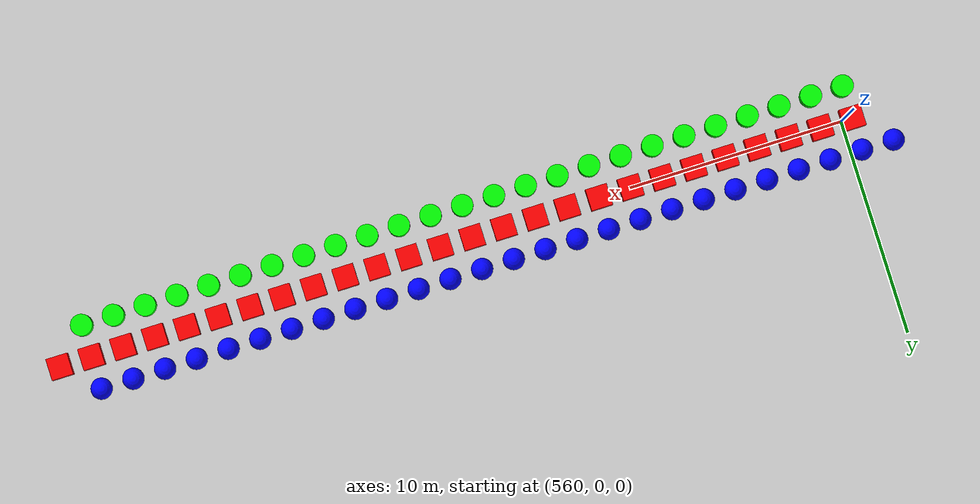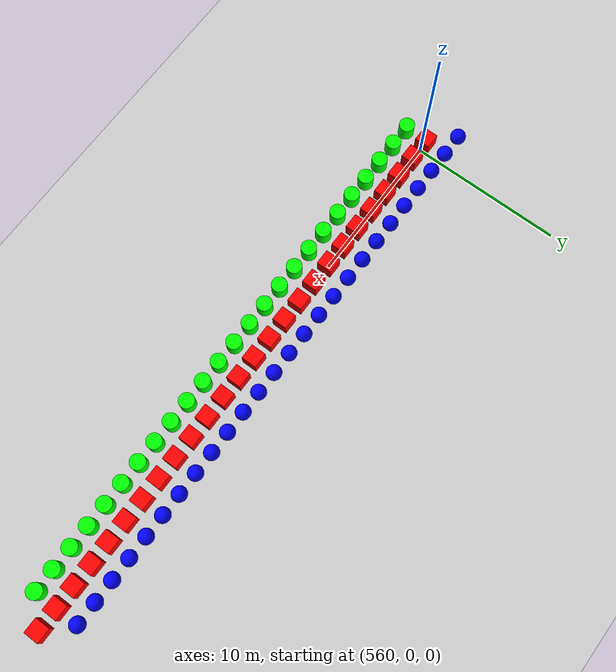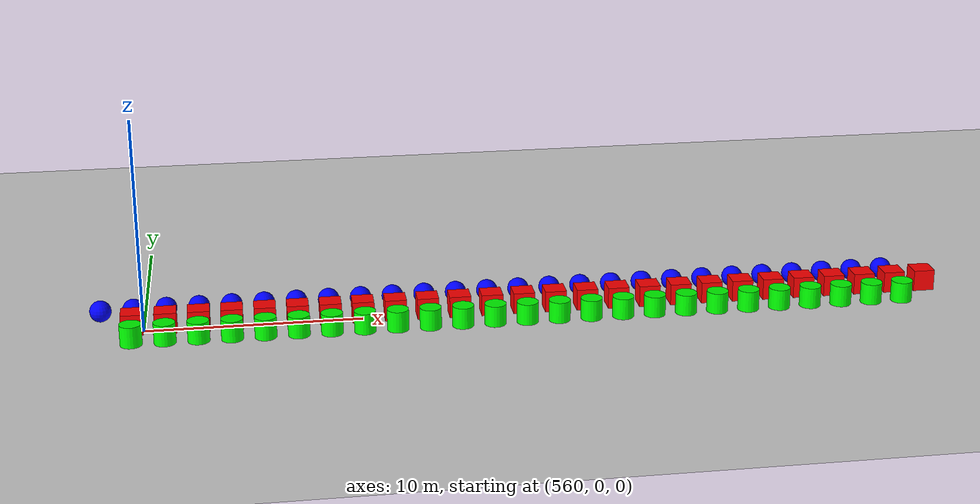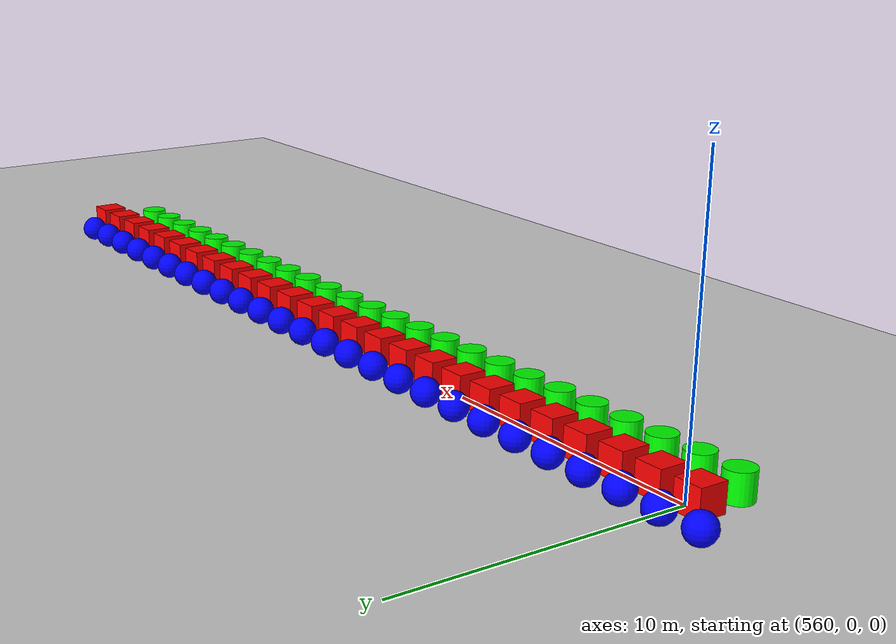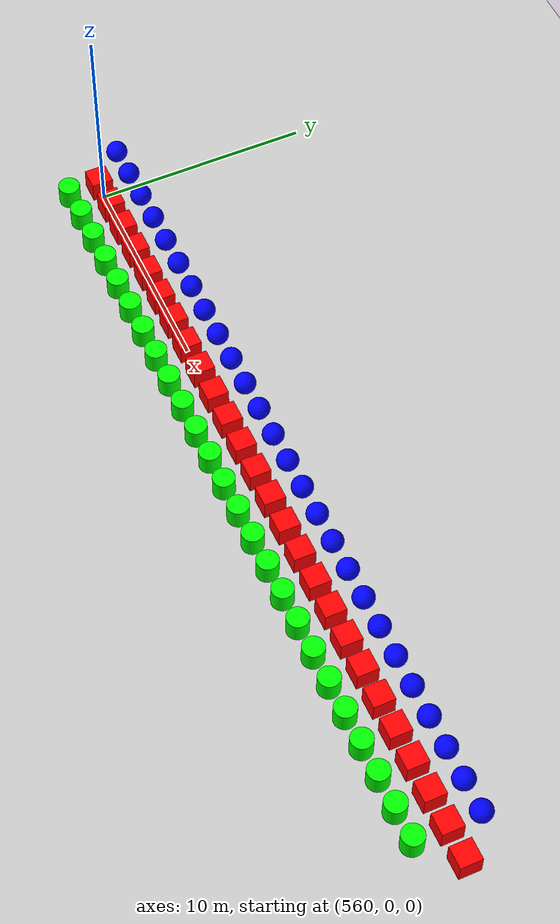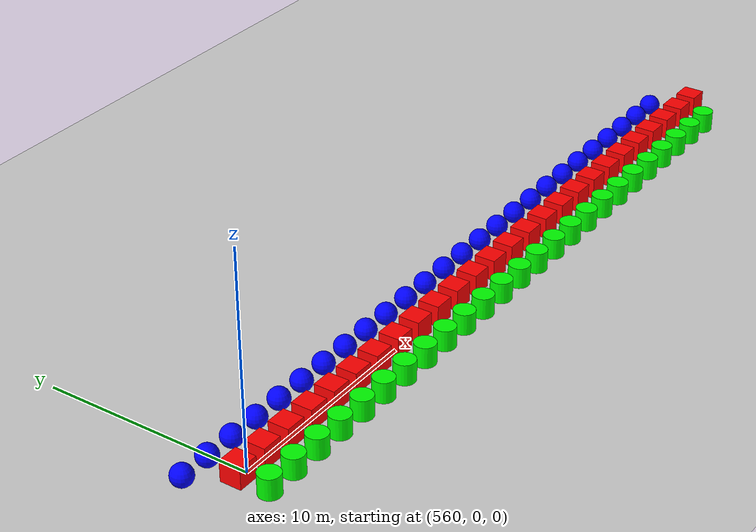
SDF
<sdf version="1.6">
 <world name="shapes">
  <model name="ground_plane">
   <static>true</static>
   <link name="link">
    <collision name="collision">
     <geometry><plane><normal>0 0 1</normal><size>100 100</size></plane></geometry>
    </collision>
    <visual name="visual">
     <geometry><plane><normal>0 0 1</normal><size>100 100</size></plane></geometry>
     <material>
      <ambient>0.8 0.8 0.8 1</ambient>
      <diffuse>0.8 0.8 0.8 1</diffuse>
      <specular>0.8 0.8 0.8 1</specular>
     </material>
    </visual>
   </link>
  </model>
  <model name="sphere_872">
   <static>false</static>
   <pose>558.0 1.5 0.5 0 0 0</pose>
   <link name="sphere_link">
    <inertial>
     <inertia><ixx>3</ixx><ixy>0</ixy><ixz>0</ixz><iyy>3</iyy><iyz>0</iyz><izz>3</izz></inertia>
     <mass>3.0</mass>
    </inertial>
    <collision name="sphere_collision"><geometry><sphere><radius>0.5</radius></sphere></geometry></collision>
    <visual name="sphere_visual">
     <geometry><sphere><radius>0.5</radius></sphere></geometry>
     <material><ambient>0 0 1 1</ambient><diffuse>0 0 1 1</diffuse><specular>0 0 1 1</specular></material>
    </visual>
   </link>
  </model>
  <model name="box_873">
   <static>false</static>
   <pose>559.5 0 0.5 0 0 0</pose>
   <link name="box_link">
    <inertial>
     <inertia><ixx>1</ixx><ixy>0</ixy><ixz>0</ixz><iyy>1</iyy><iyz>0</iyz><izz>1</izz></inertia>
     <mass>1.0</mass>
    </inertial>
    <collision name="box_collision"><geometry><box><size>1 1 1</size></box></geometry></collision>
    <visual name="box_visual">
     <geometry><box><size>1 1 1</size></box></geometry>
     <material><ambient>1 0 0 1</ambient><diffuse>1 0 0 1</diffuse><specular>1 0 0 1</specular></material>
    </visual>
   </link>
  </model>
  <model name="cylinder_873">
   <static>false</static>
   <pose>559.5 -1.5 0.5 0 0 0</pose>
   <link name="cylinder_link">
    <inertial>
     <inertia><ixx>2</ixx><ixy>0</ixy><ixz>0</ixz><iyy>2</iyy><iyz>0</iyz><izz>2</izz></inertia>
     <mass>2.0</mass>
    </inertial>
    <collision name="cylinder_collision">
     <geometry><cylinder><radius>0.5</radius><length>1.0</length></cylinder></geometry>
    </collision>
    <visual name="cylinder_visual">
     <geometry><cylinder><radius>0.5</radius><length>1.0</length></cylinder></geometry>
     <material><ambient>0 1 0 1</ambient><diffuse>0 1 0 1</diffuse><specular>0 1 0 1</specular></material>
    </visual>
   </link>
  </model>
  <model name="sphere_873">
   <static>false</static>
   <pose>559.5 1.5 0.5 0 0 0</pose>
   <link name="sphere_link">
    <inertial>
     <inertia><ixx>3</ixx><ixy>0</ixy><ixz>0</ixz><iyy>3</iyy><iyz>0</iyz><izz>3</izz></inertia>
     <mass>3.0</mass>
    </inertial>
    <collision name="sphere_collision"><geometry><sphere><radius>0.5</radius></sphere></geometry></collision>
    <visual name="sphere_visual">
     <geometry><sphere><radius>0.5</radius></sphere></geometry>
     <material><ambient>0 0 1 1</ambient><diffuse>0 0 1 1</diffuse><specular>0 0 1 1</specular></material>
    </visual>
   </link>
  </model>
  <model name="box_874">
   <static>false</static>
   <pose>561.0 0 0.5 0 0 0</pose>
   <link name="box_link">
    <inertial>
     <inertia><ixx>1</ixx><ixy>0</ixy><ixz>0</ixz><iyy>1</iyy><iyz>0</iyz><izz>1</izz></inertia>
     <mass>1.0</mass>
    </inertial>
    <collision name="box_collision"><geometry><box><size>1 1 1</size></box></geometry></collision>
    <visual name="box_visual">
     <geometry><box><size>1 1 1</size></box></geometry>
     <material><ambient>1 0 0 1</ambient><diffuse>1 0 0 1</diffuse><specular>1 0 0 1</specular></material>
    </visual>
   </link>
  </model>
  <model name="cylinder_874">
   <static>false</static>
   <pose>561.0 -1.5 0.5 0 0 0</pose>
   <link name="cylinder_link">
    <inertial>
     <inertia><ixx>2</ixx><ixy>0</ixy><ixz>0</ixz><iyy>2</iyy><iyz>0</iyz><izz>2</izz></inertia>
     <mass>2.0</mass>
    </inertial>
    <collision name="cylinder_collision">
     <geometry><cylinder><radius>0.5</radius><length>1.0</length></cylinder></geometry>
    </collision>
    <visual name="cylinder_visual">
     <geometry><cylinder><radius>0.5</radius><length>1.0</length></cylinder></geometry>
     <material><ambient>0 1 0 1</ambient><diffuse>0 1 0 1</diffuse><specular>0 1 0 1</specular></material>
    </visual>
   </link>
  </model>
  <model name="sphere_874">
   <static>false</static>
   <pose>561.0 1.5 0.5 0 0 0</pose>
   <link name="sphere_link">
    <inertial>
     <inertia><ixx>3</ixx><ixy>0</ixy><ixz>0</ixz><iyy>3</iyy><iyz>0</iyz><izz>3</izz></inertia>
     <mass>3.0</mass>
    </inertial>
    <collision name="sphere_collision"><geometry><sphere><radius>0.5</radius></sphere></geometry></collision>
    <visual name="sphere_visual">
     <geometry><sphere><radius>0.5</radius></sphere></geometry>
     <material><ambient>0 0 1 1</ambient><diffuse>0 0 1 1</diffuse><specular>0 0 1 1</specular></material>
    </visual>
   </link>
  </model>
  <model name="box_875">
   <static>false</static>
   <pose>562.5 0 0.5 0 0 0</pose>
   <link name="box_link">
    <inertial>
     <inertia><ixx>1</ixx><ixy>0</ixy><ixz>0</ixz><iyy>1</iyy><iyz>0</iyz><izz>1</izz></inertia>
     <mass>1.0</mass>
    </inertial>
    <collision name="box_collision"><geometry><box><size>1 1 1</size></box></geometry></collision>
    <visual name="box_visual">
     <geometry><box><size>1 1 1</size></box></geometry>
     <material><ambient>1 0 0 1</ambient><diffuse>1 0 0 1</diffuse><specular>1 0 0 1</specular></material>
    </visual>
   </link>
  </model>
  <model name="cylinder_875">
   <static>false</static>
   <pose>562.5 -1.5 0.5 0 0 0</pose>
   <link name="cylinder_link">
    <inertial>
     <inertia><ixx>2</ixx><ixy>0</ixy><ixz>0</ixz><iyy>2</iyy><iyz>0</iyz><izz>2</izz></inertia>
     <mass>2.0</mass>
    </inertial>
    <collision name="cylinder_collision">
     <geometry><cylinder><radius>0.5</radius><length>1.0</length></cylinder></geometry>
    </collision>
    <visual name="cylinder_visual">
     <geometry><cylinder><radius>0.5</radius><length>1.0</length></cylinder></geometry>
     <material><ambient>0 1 0 1</ambient><diffuse>0 1 0 1</diffuse><specular>0 1 0 1</specular></material>
    </visual>
   </link>
  </model>
  <model name="sphere_875">
   <static>false</static>
   <pose>562.5 1.5 0.5 0 0 0</pose>
   <link name="sphere_link">
    <inertial>
     <inertia><ixx>3</ixx><ixy>0</ixy><ixz>0</ixz><iyy>3</iyy><iyz>0</iyz><izz>3</izz></inertia>
     <mass>3.0</mass>
    </inertial>
    <collision name="sphere_collision"><geometry><sphere><radius>0.5</radius></sphere></geometry></collision>
    <visual name="sphere_visual">
     <geometry><sphere><radius>0.5</radius></sphere></geometry>
     <material><ambient>0 0 1 1</ambient><diffuse>0 0 1 1</diffuse><specular>0 0 1 1</specular></material>
    </visual>
   </link>
  </model>
  <model name="box_876">
   <static>false</static>
   <pose>564.0 0 0.5 0 0 0</pose>
   <link name="box_link">
    <inertial>
     <inertia><ixx>1</ixx><ixy>0</ixy><ixz>0</ixz><iyy>1</iyy><iyz>0</iyz><izz>1</izz></inertia>
     <mass>1.0</mass>
    </inertial>
    <collision name="box_collision"><geometry><box><size>1 1 1</size></box></geometry></collision>
    <visual name="box_visual">
     <geometry><box><size>1 1 1</size></box></geometry>
     <material><ambient>1 0 0 1</ambient><diffuse>1 0 0 1</diffuse><specular>1 0 0 1</specular></material>
    </visual>
   </link>
  </model>
  <model name="cylinder_876">
   <static>false</static>
   <pose>564.0 -1.5 0.5 0 0 0</pose>
   <link name="cylinder_link">
    <inertial>
     <inertia><ixx>2</ixx><ixy>0</ixy><ixz>0</ixz><iyy>2</iyy><iyz>0</iyz><izz>2</izz></inertia>
     <mass>2.0</mass>
    </inertial>
    <collision name="cylinder_collision">
     <geometry><cylinder><radius>0.5</radius><length>1.0</length></cylinder></geometry>
    </collision>
    <visual name="cylinder_visual">
     <geometry><cylinder><radius>0.5</radius><length>1.0</length></cylinder></geometry>
     <material><ambient>0 1 0 1</ambient><diffuse>0 1 0 1</diffuse><specular>0 1 0 1</specular></material>
    </visual>
   </link>
  </model>
  <model name="sphere_876">
   <static>false</static>
   <pose>564.0 1.5 0.5 0 0 0</pose>
   <link name="sphere_link">
    <inertial>
     <inertia><ixx>3</ixx><ixy>0</ixy><ixz>0</ixz><iyy>3</iyy><iyz>0</iyz><izz>3</izz></inertia>
     <mass>3.0</mass>
    </inertial>
    <collision name="sphere_collision"><geometry><sphere><radius>0.5</radius></sphere></geometry></collision>
    <visual name="sphere_visual">
     <geometry><sphere><radius>0.5</radius></sphere></geometry>
     <material><ambient>0 0 1 1</ambient><diffuse>0 0 1 1</diffuse><specular>0 0 1 1</specular></material>
    </visual>
   </link>
  </model>
  <model name="box_877">
   <static>false</static>
   <pose>565.5 0 0.5 0 0 0</pose>
   <link name="box_link">
    <inertial>
     <inertia><ixx>1</ixx><ixy>0</ixy><ixz>0</ixz><iyy>1</iyy><iyz>0</iyz><izz>1</izz></inertia>
     <mass>1.0</mass>
    </inertial>
    <collision name="box_collision"><geometry><box><size>1 1 1</size></box></geometry></collision>
    <visual name="box_visual">
     <geometry><box><size>1 1 1</size></box></geometry>
     <material><ambient>1 0 0 1</ambient><diffuse>1 0 0 1</diffuse><specular>1 0 0 1</specular></material>
    </visual>
   </link>
  </model>
  <model name="cylinder_877">
   <static>false</static>
   <pose>565.5 -1.5 0.5 0 0 0</pose>
   <link name="cylinder_link">
    <inertial>
     <inertia><ixx>2</ixx><ixy>0</ixy><ixz>0</ixz><iyy>2</iyy><iyz>0</iyz><izz>2</izz></inertia>
     <mass>2.0</mass>
    </inertial>
    <collision name="cylinder_collision">
     <geometry><cylinder><radius>0.5</radius><length>1.0</length></cylinder></geometry>
    </collision>
    <visual name="cylinder_visual">
     <geometry><cylinder><radius>0.5</radius><length>1.0</length></cylinder></geometry>
     <material><ambient>0 1 0 1</ambient><diffuse>0 1 0 1</diffuse><specular>0 1 0 1</specular></material>
    </visual>
   </link>
  </model>
  <model name="sphere_877">
   <static>false</static>
   <pose>565.5 1.5 0.5 0 0 0</pose>
   <link name="sphere_link">
    <inertial>
     <inertia><ixx>3</ixx><ixy>0</ixy><ixz>0</ixz><iyy>3</iyy><iyz>0</iyz><izz>3</izz></inertia>
     <mass>3.0</mass>
    </inertial>
    <collision name="sphere_collision"><geometry><sphere><radius>0.5</radius></sphere></geometry></collision>
    <visual name="sphere_visual">
     <geometry><sphere><radius>0.5</radius></sphere></geometry>
     <material><ambient>0 0 1 1</ambient><diffuse>0 0 1 1</diffuse><specular>0 0 1 1</specular></material>
    </visual>
   </link>
  </model>
  <model name="box_878">
   <static>false</static>
   <pose>567.0 0 0.5 0 0 0</pose>
   <link name="box_link">
    <inertial>
     <inertia><ixx>1</ixx><ixy>0</ixy><ixz>0</ixz><iyy>1</iyy><iyz>0</iyz><izz>1</izz></inertia>
     <mass>1.0</mass>
    </inertial>
    <collision name="box_collision"><geometry><box><size>1 1 1</size></box></geometry></collision>
    <visual name="box_visual">
     <geometry><box><size>1 1 1</size></box></geometry>
     <material><ambient>1 0 0 1</ambient><diffuse>1 0 0 1</diffuse><specular>1 0 0 1</specular></material>
    </visual>
   </link>
  </model>
  <model name="cylinder_878">
   <static>false</static>
   <pose>567.0 -1.5 0.5 0 0 0</pose>
   <link name="cylinder_link">
    <inertial>
     <inertia><ixx>2</ixx><ixy>0</ixy><ixz>0</ixz><iyy>2</iyy><iyz>0</iyz><izz>2</izz></inertia>
     <mass>2.0</mass>
    </inertial>
    <collision name="cylinder_collision">
     <geometry><cylinder><radius>0.5</radius><length>1.0</length></cylinder></geometry>
    </collision>
    <visual name="cylinder_visual">
     <geometry><cylinder><radius>0.5</radius><length>1.0</length></cylinder></geometry>
     <material><ambient>0 1 0 1</ambient><diffuse>0 1 0 1</diffuse><specular>0 1 0 1</specular></material>
    </visual>
   </link>
  </model>
  <model name="sphere_878">
   <static>false</static>
   <pose>567.0 1.5 0.5 0 0 0</pose>
   <link name="sphere_link">
    <inertial>
     <inertia><ixx>3</ixx><ixy>0</ixy><ixz>0</ixz><iyy>3</iyy><iyz>0</iyz><izz>3</izz></inertia>
     <mass>3.0</mass>
    </inertial>
    <collision name="sphere_collision"><geometry><sphere><radius>0.5</radius></sphere></geometry></collision>
    <visual name="sphere_visual">
     <geometry><sphere><radius>0.5</radius></sphere></geometry>
     <material><ambient>0 0 1 1</ambient><diffuse>0 0 1 1</diffuse><specular>0 0 1 1</specular></material>
    </visual>
   </link>
  </model>
  <model name="box_879">
   <static>false</static>
   <pose>568.5 0 0.5 0 0 0</pose>
   <link name="box_link">
    <inertial>
     <inertia><ixx>1</ixx><ixy>0</ixy><ixz>0</ixz><iyy>1</iyy><iyz>0</iyz><izz>1</izz></inertia>
     <mass>1.0</mass>
    </inertial>
    <collision name="box_collision"><geometry><box><size>1 1 1</size></box></geometry></collision>
    <visual name="box_visual">
     <geometry><box><size>1 1 1</size></box></geometry>
     <material><ambient>1 0 0 1</ambient><diffuse>1 0 0 1</diffuse><specular>1 0 0 1</specular></material>
    </visual>
   </link>
  </model>
  <model name="cylinder_879">
   <static>false</static>
   <pose>568.5 -1.5 0.5 0 0 0</pose>
   <link name="cylinder_link">
    <inertial>
     <inertia><ixx>2</ixx><ixy>0</ixy><ixz>0</ixz><iyy>2</iyy><iyz>0</iyz><izz>2</izz></inertia>
     <mass>2.0</mass>
    </inertial>
    <collision name="cylinder_collision">
     <geometry><cylinder><radius>0.5</radius><length>1.0</length></cylinder></geometry>
    </collision>
    <visual name="cylinder_visual">
     <geometry><cylinder><radius>0.5</radius><length>1.0</length></cylinder></geometry>
     <material><ambient>0 1 0 1</ambient><diffuse>0 1 0 1</diffuse><specular>0 1 0 1</specular></material>
    </visual>
   </link>
  </model>
  <model name="sphere_879">
   <static>false</static>
   <pose>568.5 1.5 0.5 0 0 0</pose>
   <link name="sphere_link">
    <inertial>
     <inertia><ixx>3</ixx><ixy>0</ixy><ixz>0</ixz><iyy>3</iyy><iyz>0</iyz><izz>3</izz></inertia>
     <mass>3.0</mass>
    </inertial>
    <collision name="sphere_collision"><geometry><sphere><radius>0.5</radius></sphere></geometry></collision>
    <visual name="sphere_visual">
     <geometry><sphere><radius>0.5</radius></sphere></geometry>
     <material><ambient>0 0 1 1</ambient><diffuse>0 0 1 1</diffuse><specular>0 0 1 1</specular></material>
    </visual>
   </link>
  </model>
  <model name="box_880">
   <static>false</static>
   <pose>570.0 0 0.5 0 0 0</pose>
   <link name="box_link">
    <inertial>
     <inertia><ixx>1</ixx><ixy>0</ixy><ixz>0</ixz><iyy>1</iyy><iyz>0</iyz><izz>1</izz></inertia>
     <mass>1.0</mass>
    </inertial>
    <collision name="box_collision"><geometry><box><size>1 1 1</size></box></geometry></collision>
    <visual name="box_visual">
     <geometry><box><size>1 1 1</size></box></geometry>
     <material><ambient>1 0 0 1</ambient><diffuse>1 0 0 1</diffuse><specular>1 0 0 1</specular></material>
    </visual>
   </link>
  </model>
  <model name="cylinder_880">
   <static>false</static>
   <pose>570.0 -1.5 0.5 0 0 0</pose>
   <link name="cylinder_link">
    <inertial>
     <inertia><ixx>2</ixx><ixy>0</ixy><ixz>0</ixz><iyy>2</iyy><iyz>0</iyz><izz>2</izz></inertia>
     <mass>2.0</mass>
    </inertial>
    <collision name="cylinder_collision">
     <geometry><cylinder><radius>0.5</radius><length>1.0</length></cylinder></geometry>
    </collision>
    <visual name="cylinder_visual">
     <geometry><cylinder><radius>0.5</radius><length>1.0</length></cylinder></geometry>
     <material><ambient>0 1 0 1</ambient><diffuse>0 1 0 1</diffuse><specular>0 1 0 1</specular></material>
    </visual>
   </link>
  </model>
  <model name="sphere_880">
   <static>false</static>
   <pose>570.0 1.5 0.5 0 0 0</pose>
   <link name="sphere_link">
    <inertial>
     <inertia><ixx>3</ixx><ixy>0</ixy><ixz>0</ixz><iyy>3</iyy><iyz>0</iyz><izz>3</izz></inertia>
     <mass>3.0</mass>
    </inertial>
    <collision name="sphere_collision"><geometry><sphere><radius>0.5</radius></sphere></geometry></collision>
    <visual name="sphere_visual">
     <geometry><sphere><radius>0.5</radius></sphere></geometry>
     <material><ambient>0 0 1 1</ambient><diffuse>0 0 1 1</diffuse><specular>0 0 1 1</specular></material>
    </visual>
   </link>
  </model>
  <model name="box_881">
   <static>false</static>
   <pose>571.5 0 0.5 0 0 0</pose>
   <link name="box_link">
    <inertial>
     <inertia><ixx>1</ixx><ixy>0</ixy><ixz>0</ixz><iyy>1</iyy><iyz>0</iyz><izz>1</izz></inertia>
     <mass>1.0</mass>
    </inertial>
    <collision name="box_collision"><geometry><box><size>1 1 1</size></box></geometry></collision>
    <visual name="box_visual">
     <geometry><box><size>1 1 1</size></box></geometry>
     <material><ambient>1 0 0 1</ambient><diffuse>1 0 0 1</diffuse><specular>1 0 0 1</specular></material>
    </visual>
   </link>
  </model>
  <model name="cylinder_881">
   <static>false</static>
   <pose>571.5 -1.5 0.5 0 0 0</pose>
   <link name="cylinder_link">
    <inertial>
     <inertia><ixx>2</ixx><ixy>0</ixy><ixz>0</ixz><iyy>2</iyy><iyz>0</iyz><izz>2</izz></inertia>
     <mass>2.0</mass>
    </inertial>
    <collision name="cylinder_collision">
     <geometry><cylinder><radius>0.5</radius><length>1.0</length></cylinder></geometry>
    </collision>
    <visual name="cylinder_visual">
     <geometry><cylinder><radius>0.5</radius><length>1.0</length></cylinder></geometry>
     <material><ambient>0 1 0 1</ambient><diffuse>0 1 0 1</diffuse><specular>0 1 0 1</specular></material>
    </visual>
   </link>
  </model>
  <model name="sphere_881">
   <static>false</static>
   <pose>571.5 1.5 0.5 0 0 0</pose>
   <link name="sphere_link">
    <inertial>
     <inertia><ixx>3</ixx><ixy>0</ixy><ixz>0</ixz><iyy>3</iyy><iyz>0</iyz><izz>3</izz></inertia>
     <mass>3.0</mass>
    </inertial>
    <collision name="sphere_collision"><geometry><sphere><radius>0.5</radius></sphere></geometry></collision>
    <visual name="sphere_visual">
     <geometry><sphere><radius>0.5</radius></sphere></geometry>
     <material><ambient>0 0 1 1</ambient><diffuse>0 0 1 1</diffuse><specular>0 0 1 1</specular></material>
    </visual>
   </link>
  </model>
  <model name="box_882">
   <static>false</static>
   <pose>573.0 0 0.5 0 0 0</pose>
   <link name="box_link">
    <inertial>
     <inertia><ixx>1</ixx><ixy>0</ixy><ixz>0</ixz><iyy>1</iyy><iyz>0</iyz><izz>1</izz></inertia>
     <mass>1.0</mass>
    </inertial>
    <collision name="box_collision"><geometry><box><size>1 1 1</size></box></geometry></collision>
    <visual name="box_visual">
     <geometry><box><size>1 1 1</size></box></geometry>
     <material><ambient>1 0 0 1</ambient><diffuse>1 0 0 1</diffuse><specular>1 0 0 1</specular></material>
    </visual>
   </link>
  </model>
  <model name="cylinder_882">
   <static>false</static>
   <pose>573.0 -1.5 0.5 0 0 0</pose>
   <link name="cylinder_link">
    <inertial>
     <inertia><ixx>2</ixx><ixy>0</ixy><ixz>0</ixz><iyy>2</iyy><iyz>0</iyz><izz>2</izz></inertia>
     <mass>2.0</mass>
    </inertial>
    <collision name="cylinder_collision">
     <geometry><cylinder><radius>0.5</radius><length>1.0</length></cylinder></geometry>
    </collision>
    <visual name="cylinder_visual">
     <geometry><cylinder><radius>0.5</radius><length>1.0</length></cylinder></geometry>
     <material><ambient>0 1 0 1</ambient><diffuse>0 1 0 1</diffuse><specular>0 1 0 1</specular></material>
    </visual>
   </link>
  </model>
  <model name="sphere_882">
   <static>false</static>
   <pose>573.0 1.5 0.5 0 0 0</pose>
   <link name="sphere_link">
    <inertial>
     <inertia><ixx>3</ixx><ixy>0</ixy><ixz>0</ixz><iyy>3</iyy><iyz>0</iyz><izz>3</izz></inertia>
     <mass>3.0</mass>
    </inertial>
    <collision name="sphere_collision"><geometry><sphere><radius>0.5</radius></sphere></geometry></collision>
    <visual name="sphere_visual">
     <geometry><sphere><radius>0.5</radius></sphere></geometry>
     <material><ambient>0 0 1 1</ambient><diffuse>0 0 1 1</diffuse><specular>0 0 1 1</specular></material>
    </visual>
   </link>
  </model>
  <model name="box_883">
   <static>false</static>
   <pose>574.5 0 0.5 0 0 0</pose>
   <link name="box_link">
    <inertial>
     <inertia><ixx>1</ixx><ixy>0</ixy><ixz>0</ixz><iyy>1</iyy><iyz>0</iyz><izz>1</izz></inertia>
     <mass>1.0</mass>
    </inertial>
    <collision name="box_collision"><geometry><box><size>1 1 1</size></box></geometry></collision>
    <visual name="box_visual">
     <geometry><box><size>1 1 1</size></box></geometry>
     <material><ambient>1 0 0 1</ambient><diffuse>1 0 0 1</diffuse><specular>1 0 0 1</specular></material>
    </visual>
   </link>
  </model>
  <model name="cylinder_883">
   <static>false</static>
   <pose>574.5 -1.5 0.5 0 0 0</pose>
   <link name="cylinder_link">
    <inertial>
     <inertia><ixx>2</ixx><ixy>0</ixy><ixz>0</ixz><iyy>2</iyy><iyz>0</iyz><izz>2</izz></inertia>
     <mass>2.0</mass>
    </inertial>
    <collision name="cylinder_collision">
     <geometry><cylinder><radius>0.5</radius><length>1.0</length></cylinder></geometry>
    </collision>
    <visual name="cylinder_visual">
     <geometry><cylinder><radius>0.5</radius><length>1.0</length></cylinder></geometry>
     <material><ambient>0 1 0 1</ambient><diffuse>0 1 0 1</diffuse><specular>0 1 0 1</specular></material>
    </visual>
   </link>
  </model>
  <model name="sphere_883">
   <static>false</static>
   <pose>574.5 1.5 0.5 0 0 0</pose>
   <link name="sphere_link">
    <inertial>
     <inertia><ixx>3</ixx><ixy>0</ixy><ixz>0</ixz><iyy>3</iyy><iyz>0</iyz><izz>3</izz></inertia>
     <mass>3.0</mass>
    </inertial>
    <collision name="sphere_collision"><geometry><sphere><radius>0.5</radius></sphere></geometry></collision>
    <visual name="sphere_visual">
     <geometry><sphere><radius>0.5</radius></sphere></geometry>
     <material><ambient>0 0 1 1</ambient><diffuse>0 0 1 1</diffuse><specular>0 0 1 1</specular></material>
    </visual>
   </link>
  </model>
  <model name="box_884">
   <static>false</static>
   <pose>576.0 0 0.5 0 0 0</pose>
   <link name="box_link">
    <inertial>
     <inertia><ixx>1</ixx><ixy>0</ixy><ixz>0</ixz><iyy>1</iyy><iyz>0</iyz><izz>1</izz></inertia>
     <mass>1.0</mass>
    </inertial>
    <collision name="box_collision"><geometry><box><size>1 1 1</size></box></geometry></collision>
    <visual name="box_visual">
     <geometry><box><size>1 1 1</size></box></geometry>
     <material><ambient>1 0 0 1</ambient><diffuse>1 0 0 1</diffuse><specular>1 0 0 1</specular></material>
    </visual>
   </link>
  </model>
  <model name="cylinder_884">
   <static>false</static>
   <pose>576.0 -1.5 0.5 0 0 0</pose>
   <link name="cylinder_link">
    <inertial>
     <inertia><ixx>2</ixx><ixy>0</ixy><ixz>0</ixz><iyy>2</iyy><iyz>0</iyz><izz>2</izz></inertia>
     <mass>2.0</mass>
    </inertial>
    <collision name="cylinder_collision">
     <geometry><cylinder><radius>0.5</radius><length>1.0</length></cylinder></geometry>
    </collision>
    <visual name="cylinder_visual">
     <geometry><cylinder><radius>0.5</radius><length>1.0</length></cylinder></geometry>
     <material><ambient>0 1 0 1</ambient><diffuse>0 1 0 1</diffuse><specular>0 1 0 1</specular></material>
    </visual>
   </link>
  </model>
  <model name="sphere_884">
   <static>false</static>
   <pose>576.0 1.5 0.5 0 0 0</pose>
   <link name="sphere_link">
    <inertial>
     <inertia><ixx>3</ixx><ixy>0</ixy><ixz>0</ixz><iyy>3</iyy><iyz>0</iyz><izz>3</izz></inertia>
     <mass>3.0</mass>
    </inertial>
    <collision name="sphere_collision"><geometry><sphere><radius>0.5</radius></sphere></geometry></collision>
    <visual name="sphere_visual">
     <geometry><sphere><radius>0.5</radius></sphere></geometry>
     <material><ambient>0 0 1 1</ambient><diffuse>0 0 1 1</diffuse><specular>0 0 1 1</specular></material>
    </visual>
   </link>
  </model>
  <model name="box_885">
   <static>false</static>
   <pose>577.5 0 0.5 0 0 0</pose>
   <link name="box_link">
    <inertial>
     <inertia><ixx>1</ixx><ixy>0</ixy><ixz>0</ixz><iyy>1</iyy><iyz>0</iyz><izz>1</izz></inertia>
     <mass>1.0</mass>
    </inertial>
    <collision name="box_collision"><geometry><box><size>1 1 1</size></box></geometry></collision>
    <visual name="box_visual">
     <geometry><box><size>1 1 1</size></box></geometry>
     <material><ambient>1 0 0 1</ambient><diffuse>1 0 0 1</diffuse><specular>1 0 0 1</specular></material>
    </visual>
   </link>
  </model>
  <model name="cylinder_885">
   <static>false</static>
   <pose>577.5 -1.5 0.5 0 0 0</pose>
   <link name="cylinder_link">
    <inertial>
     <inertia><ixx>2</ixx><ixy>0</ixy><ixz>0</ixz><iyy>2</iyy><iyz>0</iyz><izz>2</izz></inertia>
     <mass>2.0</mass>
    </inertial>
    <collision name="cylinder_collision">
     <geometry><cylinder><radius>0.5</radius><length>1.0</length></cylinder></geometry>
    </collision>
    <visual name="cylinder_visual">
     <geometry><cylinder><radius>0.5</radius><length>1.0</length></cylinder></geometry>
     <material><ambient>0 1 0 1</ambient><diffuse>0 1 0 1</diffuse><specular>0 1 0 1</specular></material>
    </visual>
   </link>
  </model>
  <model name="sphere_885">
   <static>false</static>
   <pose>577.5 1.5 0.5 0 0 0</pose>
   <link name="sphere_link">
    <inertial>
     <inertia><ixx>3</ixx><ixy>0</ixy><ixz>0</ixz><iyy>3</iyy><iyz>0</iyz><izz>3</izz></inertia>
     <mass>3.0</mass>
    </inertial>
    <collision name="sphere_collision"><geometry><sphere><radius>0.5</radius></sphere></geometry></collision>
    <visual name="sphere_visual">
     <geometry><sphere><radius>0.5</radius></sphere></geometry>
     <material><ambient>0 0 1 1</ambient><diffuse>0 0 1 1</diffuse><specular>0 0 1 1</specular></material>
    </visual>
   </link>
  </model>
  <model name="box_886">
   <static>false</static>
   <pose>579.0 0 0.5 0 0 0</pose>
   <link name="box_link">
    <inertial>
     <inertia><ixx>1</ixx><ixy>0</ixy><ixz>0</ixz><iyy>1</iyy><iyz>0</iyz><izz>1</izz></inertia>
     <mass>1.0</mass>
    </inertial>
    <collision name="box_collision"><geometry><box><size>1 1 1</size></box></geometry></collision>
    <visual name="box_visual">
     <geometry><box><size>1 1 1</size></box></geometry>
     <material><ambient>1 0 0 1</ambient><diffuse>1 0 0 1</diffuse><specular>1 0 0 1</specular></material>
    </visual>
   </link>
  </model>
  <model name="cylinder_886">
   <static>false</static>
   <pose>579.0 -1.5 0.5 0 0 0</pose>
   <link name="cylinder_link">
    <inertial>
     <inertia><ixx>2</ixx><ixy>0</ixy><ixz>0</ixz><iyy>2</iyy><iyz>0</iyz><izz>2</izz></inertia>
     <mass>2.0</mass>
    </inertial>
    <collision name="cylinder_collision">
     <geometry><cylinder><radius>0.5</radius><length>1.0</length></cylinder></geometry>
    </collision>
    <visual name="cylinder_visual">
     <geometry><cylinder><radius>0.5</radius><length>1.0</length></cylinder></geometry>
     <material><ambient>0 1 0 1</ambient><diffuse>0 1 0 1</diffuse><specular>0 1 0 1</specular></material>
    </visual>
   </link>
  </model>
  <model name="sphere_886">
   <static>false</static>
   <pose>579.0 1.5 0.5 0 0 0</pose>
   <link name="sphere_link">
    <inertial>
     <inertia><ixx>3</ixx><ixy>0</ixy><ixz>0</ixz><iyy>3</iyy><iyz>0</iyz><izz>3</izz></inertia>
     <mass>3.0</mass>
    </inertial>
    <collision name="sphere_collision"><geometry><sphere><radius>0.5</radius></sphere></geometry></collision>
    <visual name="sphere_visual">
     <geometry><sphere><radius>0.5</radius></sphere></geometry>
     <material><ambient>0 0 1 1</ambient><diffuse>0 0 1 1</diffuse><specular>0 0 1 1</specular></material>
    </visual>
   </link>
  </model>
  <model name="box_887">
   <static>false</static>
   <pose>580.5 0 0.5 0 0 0</pose>
   <link name="box_link">
    <inertial>
     <inertia><ixx>1</ixx><ixy>0</ixy><ixz>0</ixz><iyy>1</iyy><iyz>0</iyz><izz>1</izz></inertia>
     <mass>1.0</mass>
    </inertial>
    <collision name="box_collision"><geometry><box><size>1 1 1</size></box></geometry></collision>
    <visual name="box_visual">
     <geometry><box><size>1 1 1</size></box></geometry>
     <material><ambient>1 0 0 1</ambient><diffuse>1 0 0 1</diffuse><specular>1 0 0 1</specular></material>
    </visual>
   </link>
  </model>
  <model name="cylinder_887">
   <static>false</static>
   <pose>580.5 -1.5 0.5 0 0 0</pose>
   <link name="cylinder_link">
    <inertial>
     <inertia><ixx>2</ixx><ixy>0</ixy><ixz>0</ixz><iyy>2</iyy><iyz>0</iyz><izz>2</izz></inertia>
     <mass>2.0</mass>
    </inertial>
    <collision name="cylinder_collision">
     <geometry><cylinder><radius>0.5</radius><length>1.0</length></cylinder></geometry>
    </collision>
    <visual name="cylinder_visual">
     <geometry><cylinder><radius>0.5</radius><length>1.0</length></cylinder></geometry>
     <material><ambient>0 1 0 1</ambient><diffuse>0 1 0 1</diffuse><specular>0 1 0 1</specular></material>
    </visual>
   </link>
  </model>
  <model name="sphere_887">
   <static>false</static>
   <pose>580.5 1.5 0.5 0 0 0</pose>
   <link name="sphere_link">
    <inertial>
     <inertia><ixx>3</ixx><ixy>0</ixy><ixz>0</ixz><iyy>3</iyy><iyz>0</iyz><izz>3</izz></inertia>
     <mass>3.0</mass>
    </inertial>
    <collision name="sphere_collision"><geometry><sphere><radius>0.5</radius></sphere></geometry></collision>
    <visual name="sphere_visual">
     <geometry><sphere><radius>0.5</radius></sphere></geometry>
     <material><ambient>0 0 1 1</ambient><diffuse>0 0 1 1</diffuse><specular>0 0 1 1</specular></material>
    </visual>
   </link>
  </model>
  <model name="box_888">
   <static>false</static>
   <pose>582.0 0 0.5 0 0 0</pose>
   <link name="box_link">
    <inertial>
     <inertia><ixx>1</ixx><ixy>0</ixy><ixz>0</ixz><iyy>1</iyy><iyz>0</iyz><izz>1</izz></inertia>
     <mass>1.0</mass>
    </inertial>
    <collision name="box_collision"><geometry><box><size>1 1 1</size></box></geometry></collision>
    <visual name="box_visual">
     <geometry><box><size>1 1 1</size></box></geometry>
     <material><ambient>1 0 0 1</ambient><diffuse>1 0 0 1</diffuse><specular>1 0 0 1</specular></material>
    </visual>
   </link>
  </model>
  <model name="cylinder_888">
   <static>false</static>
   <pose>582.0 -1.5 0.5 0 0 0</pose>
   <link name="cylinder_link">
    <inertial>
     <inertia><ixx>2</ixx><ixy>0</ixy><ixz>0</ixz><iyy>2</iyy><iyz>0</iyz><izz>2</izz></inertia>
     <mass>2.0</mass>
    </inertial>
    <collision name="cylinder_collision">
     <geometry><cylinder><radius>0.5</radius><length>1.0</length></cylinder></geometry>
    </collision>
    <visual name="cylinder_visual">
     <geometry><cylinder><radius>0.5</radius><length>1.0</length></cylinder></geometry>
     <material><ambient>0 1 0 1</ambient><diffuse>0 1 0 1</diffuse><specular>0 1 0 1</specular></material>
    </visual>
   </link>
  </model>
  <model name="sphere_888">
   <static>false</static>
   <pose>582.0 1.5 0.5 0 0 0</pose>
   <link name="sphere_link">
    <inertial>
     <inertia><ixx>3</ixx><ixy>0</ixy><ixz>0</ixz><iyy>3</iyy><iyz>0</iyz><izz>3</izz></inertia>
     <mass>3.0</mass>
    </inertial>
    <collision name="sphere_collision"><geometry><sphere><radius>0.5</radius></sphere></geometry></collision>
    <visual name="sphere_visual">
     <geometry><sphere><radius>0.5</radius></sphere></geometry>
     <material><ambient>0 0 1 1</ambient><diffuse>0 0 1 1</diffuse><specular>0 0 1 1</specular></material>
    </visual>
   </link>
  </model>
  <model name="box_889">
   <static>false</static>
   <pose>583.5 0 0.5 0 0 0</pose>
   <link name="box_link">
    <inertial>
     <inertia><ixx>1</ixx><ixy>0</ixy><ixz>0</ixz><iyy>1</iyy><iyz>0</iyz><izz>1</izz></inertia>
     <mass>1.0</mass>
    </inertial>
    <collision name="box_collision"><geometry><box><size>1 1 1</size></box></geometry></collision>
    <visual name="box_visual">
     <geometry><box><size>1 1 1</size></box></geometry>
     <material><ambient>1 0 0 1</ambient><diffuse>1 0 0 1</diffuse><specular>1 0 0 1</specular></material>
    </visual>
   </link>
  </model>
  <model name="cylinder_889">
   <static>false</static>
   <pose>583.5 -1.5 0.5 0 0 0</pose>
   <link name="cylinder_link">
    <inertial>
     <inertia><ixx>2</ixx><ixy>0</ixy><ixz>0</ixz><iyy>2</iyy><iyz>0</iyz><izz>2</izz></inertia>
     <mass>2.0</mass>
    </inertial>
    <collision name="cylinder_collision">
     <geometry><cylinder><radius>0.5</radius><length>1.0</length></cylinder></geometry>
    </collision>
    <visual name="cylinder_visual">
     <geometry><cylinder><radius>0.5</radius><length>1.0</length></cylinder></geometry>
     <material><ambient>0 1 0 1</ambient><diffuse>0 1 0 1</diffuse><specular>0 1 0 1</specular></material>
    </visual>
   </link>
  </model>
  <model name="sphere_889">
   <static>false</static>
   <pose>583.5 1.5 0.5 0 0 0</pose>
   <link name="sphere_link">
    <inertial>
     <inertia><ixx>3</ixx><ixy>0</ixy><ixz>0</ixz><iyy>3</iyy><iyz>0</iyz><izz>3</izz></inertia>
     <mass>3.0</mass>
    </inertial>
    <collision name="sphere_collision"><geometry><sphere><radius>0.5</radius></sphere></geometry></collision>
    <visual name="sphere_visual">
     <geometry><sphere><radius>0.5</radius></sphere></geometry>
     <material><ambient>0 0 1 1</ambient><diffuse>0 0 1 1</diffuse><specular>0 0 1 1</specular></material>
    </visual>
   </link>
  </model>
  <model name="box_890">
   <static>false</static>
   <pose>585.0 0 0.5 0 0 0</pose>
   <link name="box_link">
    <inertial>
     <inertia><ixx>1</ixx><ixy>0</ixy><ixz>0</ixz><iyy>1</iyy><iyz>0</iyz><izz>1</izz></inertia>
     <mass>1.0</mass>
    </inertial>
    <collision name="box_collision"><geometry><box><size>1 1 1</size></box></geometry></collision>
    <visual name="box_visual">
     <geometry><box><size>1 1 1</size></box></geometry>
     <material><ambient>1 0 0 1</ambient><diffuse>1 0 0 1</diffuse><specular>1 0 0 1</specular></material>
    </visual>
   </link>
  </model>
  <model name="cylinder_890">
   <static>false</static>
   <pose>585.0 -1.5 0.5 0 0 0</pose>
   <link name="cylinder_link">
    <inertial>
     <inertia><ixx>2</ixx><ixy>0</ixy><ixz>0</ixz><iyy>2</iyy><iyz>0</iyz><izz>2</izz></inertia>
     <mass>2.0</mass>
    </inertial>
    <collision name="cylinder_collision">
     <geometry><cylinder><radius>0.5</radius><length>1.0</length></cylinder></geometry>
    </collision>
    <visual name="cylinder_visual">
     <geometry><cylinder><radius>0.5</radius><length>1.0</length></cylinder></geometry>
     <material><ambient>0 1 0 1</ambient><diffuse>0 1 0 1</diffuse><specular>0 1 0 1</specular></material>
    </visual>
   </link>
  </model>
  <model name="sphere_890">
   <static>false</static>
   <pose>585.0 1.5 0.5 0 0 0</pose>
   <link name="sphere_link">
    <inertial>
     <inertia><ixx>3</ixx><ixy>0</ixy><ixz>0</ixz><iyy>3</iyy><iyz>0</iyz><izz>3</izz></inertia>
     <mass>3.0</mass>
    </inertial>
    <collision name="sphere_collision"><geometry><sphere><radius>0.5</radius></sphere></geometry></collision>
    <visual name="sphere_visual">
     <geometry><sphere><radius>0.5</radius></sphere></geometry>
     <material><ambient>0 0 1 1</ambient><diffuse>0 0 1 1</diffuse><specular>0 0 1 1</specular></material>
    </visual>
   </link>
  </model>
  <model name="box_891">
   <static>false</static>
   <pose>586.5 0 0.5 0 0 0</pose>
   <link name="box_link">
    <inertial>
     <inertia><ixx>1</ixx><ixy>0</ixy><ixz>0</ixz><iyy>1</iyy><iyz>0</iyz><izz>1</izz></inertia>
     <mass>1.0</mass>
    </inertial>
    <collision name="box_collision"><geometry><box><size>1 1 1</size></box></geometry></collision>
    <visual name="box_visual">
     <geometry><box><size>1 1 1</size></box></geometry>
     <material><ambient>1 0 0 1</ambient><diffuse>1 0 0 1</diffuse><specular>1 0 0 1</specular></material>
    </visual>
   </link>
  </model>
  <model name="cylinder_891">
   <static>false</static>
   <pose>586.5 -1.5 0.5 0 0 0</pose>
   <link name="cylinder_link">
    <inertial>
     <inertia><ixx>2</ixx><ixy>0</ixy><ixz>0</ixz><iyy>2</iyy><iyz>0</iyz><izz>2</izz></inertia>
     <mass>2.0</mass>
    </inertial>
    <collision name="cylinder_collision">
     <geometry><cylinder><radius>0.5</radius><length>1.0</length></cylinder></geometry>
    </collision>
    <visual name="cylinder_visual">
     <geometry><cylinder><radius>0.5</radius><length>1.0</length></cylinder></geometry>
     <material><ambient>0 1 0 1</ambient><diffuse>0 1 0 1</diffuse><specular>0 1 0 1</specular></material>
    </visual>
   </link>
  </model>
  <model name="sphere_891">
   <static>false</static>
   <pose>586.5 1.5 0.5 0 0 0</pose>
   <link name="sphere_link">
    <inertial>
     <inertia><ixx>3</ixx><ixy>0</ixy><ixz>0</ixz><iyy>3</iyy><iyz>0</iyz><izz>3</izz></inertia>
     <mass>3.0</mass>
    </inertial>
    <collision name="sphere_collision"><geometry><sphere><radius>0.5</radius></sphere></geometry></collision>
    <visual name="sphere_visual">
     <geometry><sphere><radius>0.5</radius></sphere></geometry>
     <material><ambient>0 0 1 1</ambient><diffuse>0 0 1 1</diffuse><specular>0 0 1 1</specular></material>
    </visual>
   </link>
  </model>
  <model name="box_892">
   <static>false</static>
   <pose>588.0 0 0.5 0 0 0</pose>
   <link name="box_link">
    <inertial>
     <inertia><ixx>1</ixx><ixy>0</ixy><ixz>0</ixz><iyy>1</iyy><iyz>0</iyz><izz>1</izz></inertia>
     <mass>1.0</mass>
    </inertial>
    <collision name="box_collision"><geometry><box><size>1 1 1</size></box></geometry></collision>
    <visual name="box_visual">
     <geometry><box><size>1 1 1</size></box></geometry>
     <material><ambient>1 0 0 1</ambient><diffuse>1 0 0 1</diffuse><specular>1 0 0 1</specular></material>
    </visual>
   </link>
  </model>
  <model name="cylinder_892">
   <static>false</static>
   <pose>588.0 -1.5 0.5 0 0 0</pose>
   <link name="cylinder_link">
    <inertial>
     <inertia><ixx>2</ixx><ixy>0</ixy><ixz>0</ixz><iyy>2</iyy><iyz>0</iyz><izz>2</izz></inertia>
     <mass>2.0</mass>
    </inertial>
    <collision name="cylinder_collision">
     <geometry><cylinder><radius>0.5</radius><length>1.0</length></cylinder></geometry>
    </collision>
    <visual name="cylinder_visual">
     <geometry><cylinder><radius>0.5</radius><length>1.0</length></cylinder></geometry>
     <material><ambient>0 1 0 1</ambient><diffuse>0 1 0 1</diffuse><specular>0 1 0 1</specular></material>
    </visual>
   </link>
  </model>
  <model name="sphere_892">
   <static>false</static>
   <pose>588.0 1.5 0.5 0 0 0</pose>
   <link name="sphere_link">
    <inertial>
     <inertia><ixx>3</ixx><ixy>0</ixy><ixz>0</ixz><iyy>3</iyy><iyz>0</iyz><izz>3</izz></inertia>
     <mass>3.0</mass>
    </inertial>
    <collision name="sphere_collision"><geometry><sphere><radius>0.5</radius></sphere></geometry></collision>
    <visual name="sphere_visual">
     <geometry><sphere><radius>0.5</radius></sphere></geometry>
     <material><ambient>0 0 1 1</ambient><diffuse>0 0 1 1</diffuse><specular>0 0 1 1</specular></material>
    </visual>
   </link>
  </model>
  <model name="box_893">
   <static>false</static>
   <pose>589.5 0 0.5 0 0 0</pose>
   <link name="box_link">
    <inertial>
     <inertia><ixx>1</ixx><ixy>0</ixy><ixz>0</ixz><iyy>1</iyy><iyz>0</iyz><izz>1</izz></inertia>
     <mass>1.0</mass>
    </inertial>
    <collision name="box_collision"><geometry><box><size>1 1 1</size></box></geometry></collision>
    <visual name="box_visual">
     <geometry><box><size>1 1 1</size></box></geometry>
     <material><ambient>1 0 0 1</ambient><diffuse>1 0 0 1</diffuse><specular>1 0 0 1</specular></material>
    </visual>
   </link>
  </model>
  <model name="cylinder_893">
   <static>false</static>
   <pose>589.5 -1.5 0.5 0 0 0</pose>
   <link name="cylinder_link">
    <inertial>
     <inertia><ixx>2</ixx><ixy>0</ixy><ixz>0</ixz><iyy>2</iyy><iyz>0</iyz><izz>2</izz></inertia>
     <mass>2.0</mass>
    </inertial>
    <collision name="cylinder_collision">
     <geometry><cylinder><radius>0.5</radius><length>1.0</length></cylinder></geometry>
    </collision>
    <visual name="cylinder_visual">
     <geometry><cylinder><radius>0.5</radius><length>1.0</length></cylinder></geometry>
     <material><ambient>0 1 0 1</ambient><diffuse>0 1 0 1</diffuse><specular>0 1 0 1</specular></material>
    </visual>
   </link>
  </model>
  <model name="sphere_893">
   <static>false</static>
   <pose>589.5 1.5 0.5 0 0 0</pose>
   <link name="sphere_link">
    <inertial>
     <inertia><ixx>3</ixx><ixy>0</ixy><ixz>0</ixz><iyy>3</iyy><iyz>0</iyz><izz>3</izz></inertia>
     <mass>3.0</mass>
    </inertial>
    <collision name="sphere_collision"><geometry><sphere><radius>0.5</radius></sphere></geometry></collision>
    <visual name="sphere_visual">
     <geometry><sphere><radius>0.5</radius></sphere></geometry>
     <material><ambient>0 0 1 1</ambient><diffuse>0 0 1 1</diffuse><specular>0 0 1 1</specular></material>
    </visual>
   </link>
  </model>
  <model name="box_894">
   <static>false</static>
   <pose>591.0 0 0.5 0 0 0</pose>
   <link name="box_link">
    <inertial>
     <inertia><ixx>1</ixx><ixy>0</ixy><ixz>0</ixz><iyy>1</iyy><iyz>0</iyz><izz>1</izz></inertia>
     <mass>1.0</mass>
    </inertial>
    <collision name="box_collision"><geometry><box><size>1 1 1</size></box></geometry></collision>
    <visual name="box_visual">
     <geometry><box><size>1 1 1</size></box></geometry>
     <material><ambient>1 0 0 1</ambient><diffuse>1 0 0 1</diffuse><specular>1 0 0 1</specular></material>
    </visual>
   </link>
  </model>
  <model name="cylinder_894">
   <static>false</static>
   <pose>591.0 -1.5 0.5 0 0 0</pose>
   <link name="cylinder_link">
    <inertial>
     <inertia><ixx>2</ixx><ixy>0</ixy><ixz>0</ixz><iyy>2</iyy><iyz>0</iyz><izz>2</izz></inertia>
     <mass>2.0</mass>
    </inertial>
    <collision name="cylinder_collision">
     <geometry><cylinder><radius>0.5</radius><length>1.0</length></cylinder></geometry>
    </collision>
    <visual name="cylinder_visual">
     <geometry><cylinder><radius>0.5</radius><length>1.0</length></cylinder></geometry>
     <material><ambient>0 1 0 1</ambient><diffuse>0 1 0 1</diffuse><specular>0 1 0 1</specular></material>
    </visual>
   </link>
  </model>
  <model name="sphere_894">
   <static>false</static>
   <pose>591.0 1.5 0.5 0 0 0</pose>
   <link name="sphere_link">
    <inertial>
     <inertia><ixx>3</ixx><ixy>0</ixy><ixz>0</ixz><iyy>3</iyy><iyz>0</iyz><izz>3</izz></inertia>
     <mass>3.0</mass>
    </inertial>
    <collision name="sphere_collision"><geometry><sphere><radius>0.5</radius></sphere></geometry></collision>
    <visual name="sphere_visual">
     <geometry><sphere><radius>0.5</radius></sphere></geometry>
     <material><ambient>0 0 1 1</ambient><diffuse>0 0 1 1</diffuse><specular>0 0 1 1</specular></material>
    </visual>
   </link>
  </model>
  <model name="box_895">
   <static>false</static>
   <pose>592.5 0 0.5 0 0 0</pose>
   <link name="box_link">
    <inertial>
     <inertia><ixx>1</ixx><ixy>0</ixy><ixz>0</ixz><iyy>1</iyy><iyz>0</iyz><izz>1</izz></inertia>
     <mass>1.0</mass>
    </inertial>
    <collision name="box_collision"><geometry><box><size>1 1 1</size></box></geometry></collision>
    <visual name="box_visual">
     <geometry><box><size>1 1 1</size></box></geometry>
     <material><ambient>1 0 0 1</ambient><diffuse>1 0 0 1</diffuse><specular>1 0 0 1</specular></material>
    </visual>
   </link>
  </model>
  <model name="cylinder_895">
   <static>false</static>
   <pose>592.5 -1.5 0.5 0 0 0</pose>
   <link name="cylinder_link">
    <inertial>
     <inertia><ixx>2</ixx><ixy>0</ixy><ixz>0</ixz><iyy>2</iyy><iyz>0</iyz><izz>2</izz></inertia>
     <mass>2.0</mass>
    </inertial>
    <collision name="cylinder_collision">
     <geometry><cylinder><radius>0.5</radius><length>1.0</length></cylinder></geometry>
    </collision>
    <visual name="cylinder_visual">
     <geometry><cylinder><radius>0.5</radius><length>1.0</length></cylinder></geometry>
     <material><ambient>0 1 0 1</ambient><diffuse>0 1 0 1</diffuse><specular>0 1 0 1</specular></material>
    </visual>
   </link>
  </model>
  <model name="sphere_895">
   <static>false</static>
   <pose>592.5 1.5 0.5 0 0 0</pose>
   <link name="sphere_link">
    <inertial>
     <inertia><ixx>3</ixx><ixy>0</ixy><ixz>0</ixz><iyy>3</iyy><iyz>0</iyz><izz>3</izz></inertia>
     <mass>3.0</mass>
    </inertial>
    <collision name="sphere_collision"><geometry><sphere><radius>0.5</radius></sphere></geometry></collision>
    <visual name="sphere_visual">
     <geometry><sphere><radius>0.5</radius></sphere></geometry>
     <material><ambient>0 0 1 1</ambient><diffuse>0 0 1 1</diffuse><specular>0 0 1 1</specular></material>
    </visual>
   </link>
  </model>
  <model name="box_896">
   <static>false</static>
   <pose>594.0 0 0.5 0 0 0</pose>
   <link name="box_link">
    <inertial>
     <inertia><ixx>1</ixx><ixy>0</ixy><ixz>0</ixz><iyy>1</iyy><iyz>0</iyz><izz>1</izz></inertia>
     <mass>1.0</mass>
    </inertial>
    <collision name="box_collision"><geometry><box><size>1 1 1</size></box></geometry></collision>
    <visual name="box_visual">
     <geometry><box><size>1 1 1</size></box></geometry>
     <material><ambient>1 0 0 1</ambient><diffuse>1 0 0 1</diffuse><specular>1 0 0 1</specular></material>
    </visual>
   </link>
  </model>
  <model name="cylinder_896">
   <static>false</static>
   <pose>594.0 -1.5 0.5 0 0 0</pose>
   <link name="cylinder_link">
    <inertial>
     <inertia><ixx>2</ixx><ixy>0</ixy><ixz>0</ixz><iyy>2</iyy><iyz>0</iyz><izz>2</izz></inertia>
     <mass>2.0</mass>
    </inertial>
    <collision name="cylinder_collision">
     <geometry><cylinder><radius>0.5</radius><length>1.0</length></cylinder></geometry>
    </collision>
    <visual name="cylinder_visual">
     <geometry><cylinder><radius>0.5</radius><length>1.0</length></cylinder></geometry>
     <material><ambient>0 1 0 1</ambient><diffuse>0 1 0 1</diffuse><specular>0 1 0 1</specular></material>
    </visual>
   </link>
  </model>
  <model name="sphere_896">
   <static>false</static>
   <pose>594.0 1.5 0.5 0 0 0</pose>
   <link name="sphere_link">
    <inertial>
     <inertia><ixx>3</ixx><ixy>0</ixy><ixz>0</ixz><iyy>3</iyy><iyz>0</iyz><izz>3</izz></inertia>
     <mass>3.0</mass>
    </inertial>
    <collision name="sphere_collision"><geometry><sphere><radius>0.5</radius></sphere></geometry></collision>
    <visual name="sphere_visual">
     <geometry><sphere><radius>0.5</radius></sphere></geometry>
     <material><ambient>0 0 1 1</ambient><diffuse>0 0 1 1</diffuse><specular>0 0 1 1</specular></material>
    </visual>
   </link>
  </model>
  <model name="box_897">
   <static>false</static>
   <pose>595.5 0 0.5 0 0 0</pose>
   <link name="box_link">
    <inertial>
     <inertia><ixx>1</ixx><ixy>0</ixy><ixz>0</ixz><iyy>1</iyy><iyz>0</iyz><izz>1</izz></inertia>
     <mass>1.0</mass>
    </inertial>
    <collision name="box_collision"><geometry><box><size>1 1 1</size></box></geometry></collision>
    <visual name="box_visual">
     <geometry><box><size>1 1 1</size></box></geometry>
     <material><ambient>1 0 0 1</ambient><diffuse>1 0 0 1</diffuse><specular>1 0 0 1</specular></material>
    </visual>
   </link>
  </model>
  <model name="cylinder_897">
   <static>false</static>
   <pose>595.5 -1.5 0.5 0 0 0</pose>
   <link name="cylinder_link">
    <inertial>
     <inertia><ixx>2</ixx><ixy>0</ixy><ixz>0</ixz><iyy>2</iyy><iyz>0</iyz><izz>2</izz></inertia>
     <mass>2.0</mass>
    </inertial>
    <collision name="cylinder_collision">
     <geometry><cylinder><radius>0.5</radius><length>1.0</length></cylinder></geometry>
    </collision>
    <visual name="cylinder_visual">
     <geometry><cylinder><radius>0.5</radius><length>1.0</length></cylinder></geometry>
     <material><ambient>0 1 0 1</ambient><diffuse>0 1 0 1</diffuse><specular>0 1 0 1</specular></material>
    </visual>
   </link>
  </model>
  <model name="sphere_897">
   <static>false</static>
   <pose>595.5 1.5 0.5 0 0 0</pose>
   <link name="sphere_link">
    <inertial>
     <inertia><ixx>3</ixx><ixy>0</ixy><ixz>0</ixz><iyy>3</iyy><iyz>0</iyz><izz>3</izz></inertia>
     <mass>3.0</mass>
    </inertial>
    <collision name="sphere_collision"><geometry><sphere><radius>0.5</radius></sphere></geometry></collision>
    <visual name="sphere_visual">
     <geometry><sphere><radius>0.5</radius></sphere></geometry>
     <material><ambient>0 0 1 1</ambient><diffuse>0 0 1 1</diffuse><specular>0 0 1 1</specular></material>
    </visual>
   </link>
  </model>
  <model name="box_898">
   <static>false</static>
   <pose>597.0 0 0.5 0 0 0</pose>
   <link name="box_link">
    <inertial>
     <inertia><ixx>1</ixx><ixy>0</ixy><ixz>0</ixz><iyy>1</iyy><iyz>0</iyz><izz>1</izz></inertia>
     <mass>1.0</mass>
    </inertial>
    <collision name="box_collision"><geometry><box><size>1 1 1</size></box></geometry></collision>
    <visual name="box_visual">
     <geometry><box><size>1 1 1</size></box></geometry>
     <material><ambient>1 0 0 1</ambient><diffuse>1 0 0 1</diffuse><specular>1 0 0 1</specular></material>
    </visual>
   </link>
  </model>
 </world>
</sdf>
